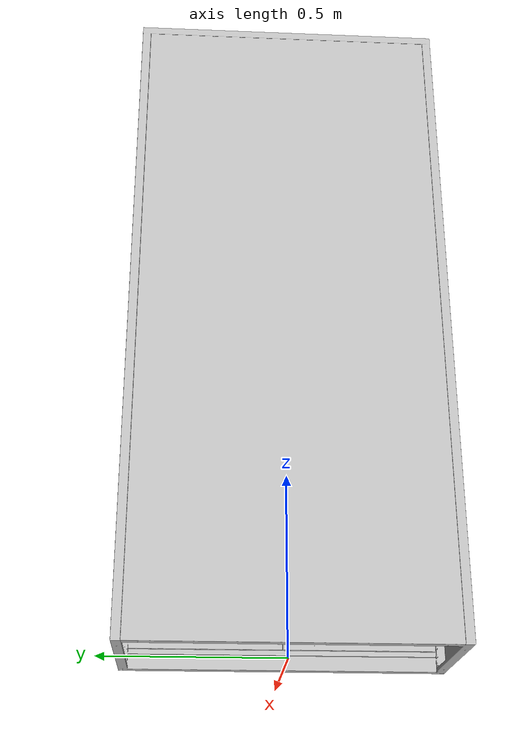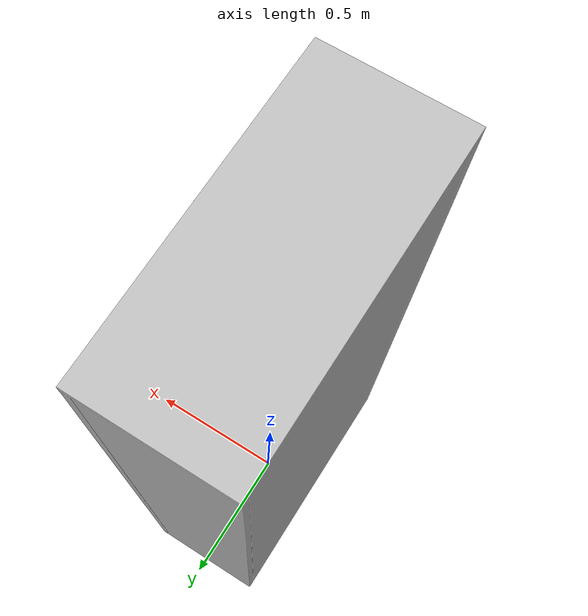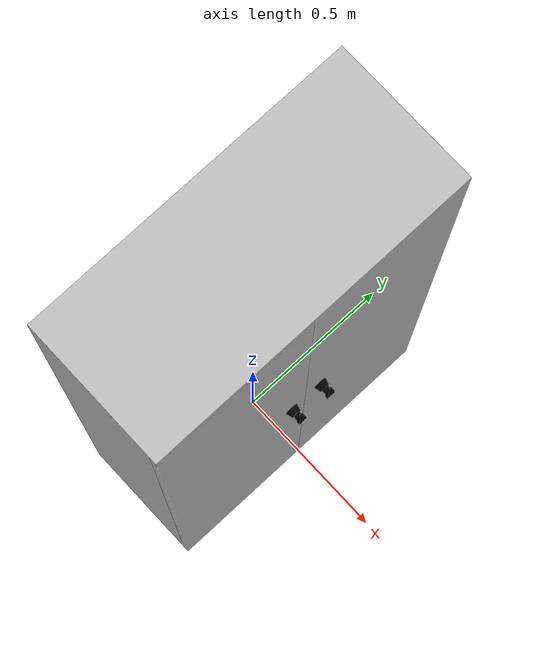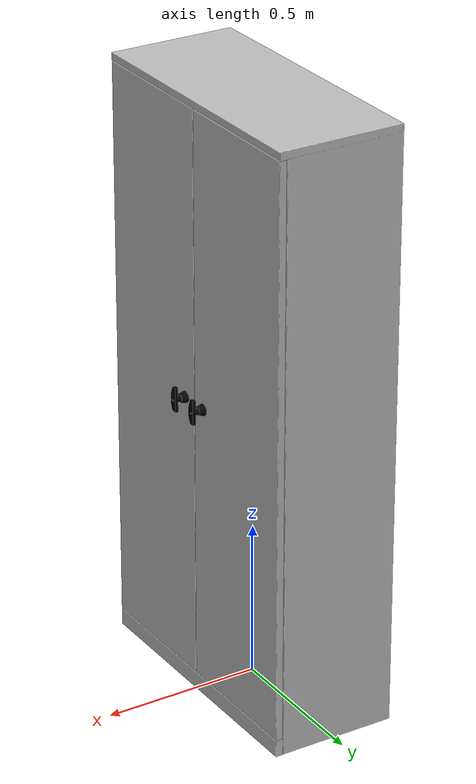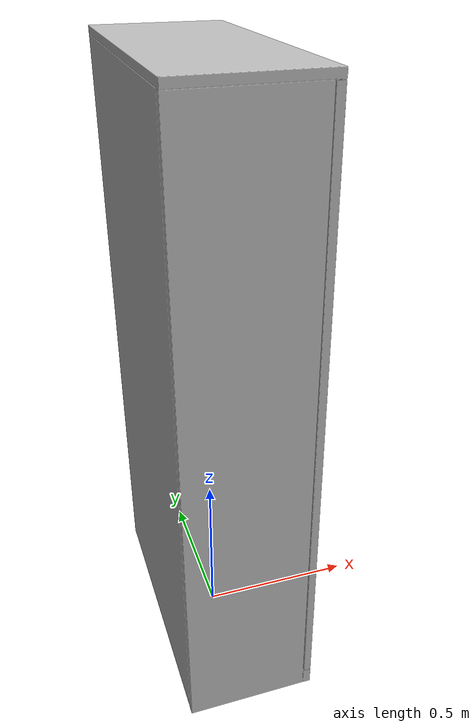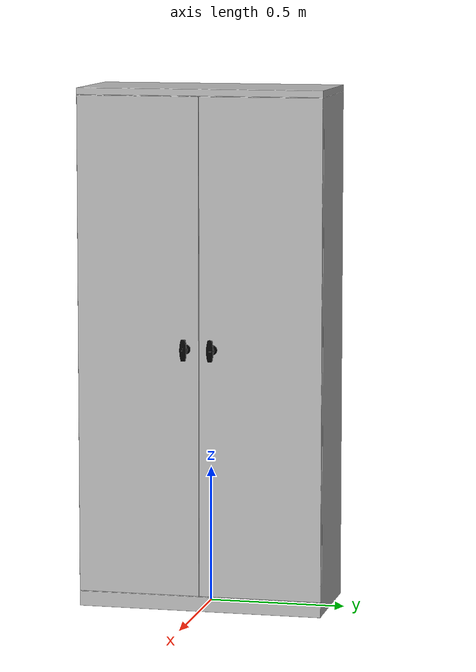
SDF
<?xml version='1.0' ?>
<sdf version='1.6'>
  <model name='metal_cabinet'>
    <static>false</static>
    <link name='link'>
      <collision name='collision'>
        <geometry>
          <mesh>
            <uri>model://volta_simulation/models/metal_cabinet/meshes/metal_cabinet.dae</uri>
          </mesh>
        </geometry>
        <surface>
          <friction>
            <ode>
              <mu>100</mu>
              <mu2>50</mu2>
            </ode>
          </friction>
        </surface>
      </collision>
      <visual name='visual'>
        <geometry>
          <mesh>
            <uri>model://volta_simulation/models/metal_cabinet/meshes/metal_cabinet.dae</uri>
          </mesh>
        </geometry>
</visual>
      <inertial>
        <pose>0 0 0.60843 0 0 0</pose>
        <mass>30</mass>
        <inertia>
          <ixx>20.4610511803 </ixx>
          <iyy>10.5868357872 </iyy>
          <izz>3.40465113158</izz>
          <ixy>0</ixy>
          <ixz>0 </ixz>
          <iyz>0</iyz>
        </inertia>
      </inertial>
    </link>
  </model>
</sdf>
